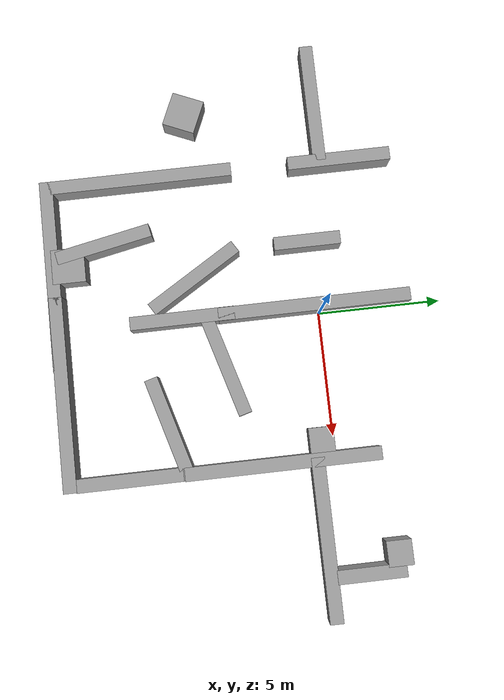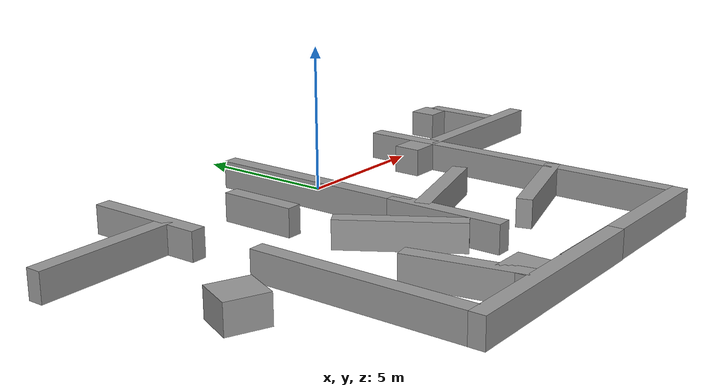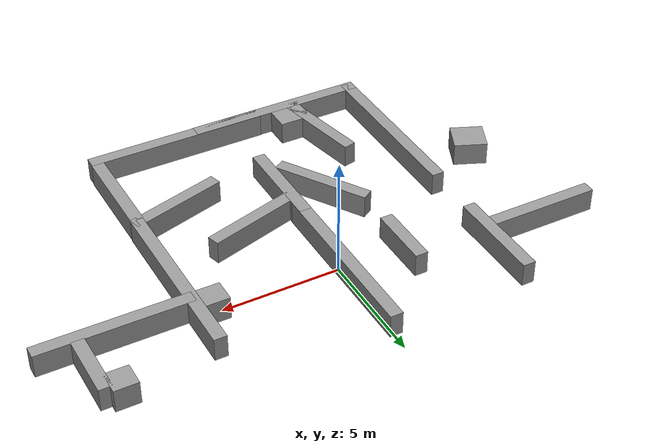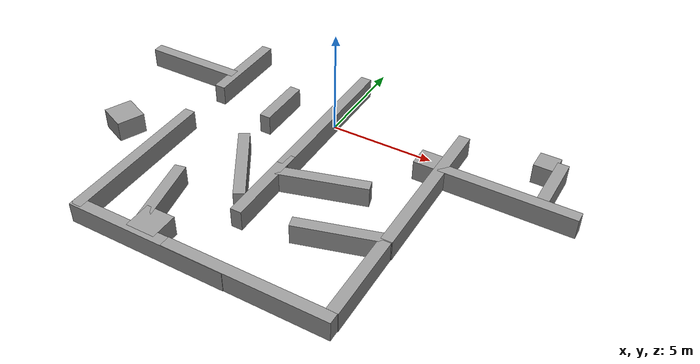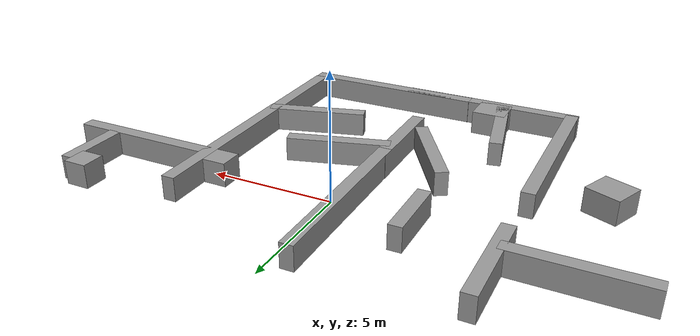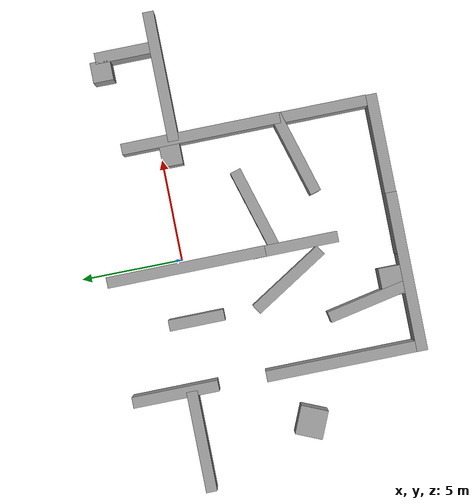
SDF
<sdf version="1.6">
 <model name="Maze01">
  <link name="link_10">
   <pose>9.80009 2.02423 9e-06 0 -0 0</pose>
   <inertial>
    <mass>1</mass>
    <inertia>
     <ixx>0.166667</ixx>
     <ixy>0</ixy>
     <ixz>0</ixz>
     <iyy>0.166667</iyy>
     <iyz>0</iyz>
     <izz>0.166667</izz>
    </inertia>
   </inertial>
   <visual name="visual">
    <geometry><box><size>1 1 1</size></box></geometry>
    <material>
     <lighting>1</lighting>
     <script><uri>file://media/materials/scripts/gazebo.material</uri><name>Gazebo/Grey</name></script>
     <ambient>0.3 0.3 0.3 1</ambient>
     <diffuse>0.7 0.7 0.7 1</diffuse>
     <specular>0.01 0.01 0.01 1</specular>
     <emissive>0 0 0 1</emissive>
    </material>
   </visual>
   <collision name="collision">
    <geometry><box><size>1 1 1</size></box></geometry>
    <surface>
     <friction>
      <ode><mu>1</mu><mu2>1</mu2><fdir1>0 0 0</fdir1><slip1>0</slip1><slip2>0</slip2></ode>
      <torsional>
       <coefficient>1</coefficient>
       <patch_radius>0</patch_radius>
       <surface_radius>0</surface_radius>
       <use_patch_radius>1</use_patch_radius>
       <ode><slip>0</slip></ode>
      </torsional>
     </friction>
     <bounce><restitution_coefficient>0</restitution_coefficient><threshold>1e+06</threshold></bounce>
     <contact>
      <collide_without_contact>0</collide_without_contact>
      <collide_without_contact_bitmask>1</collide_without_contact_bitmask>
      <collide_bitmask>1</collide_bitmask>
      <ode>
       <soft_cfm>0</soft_cfm>
       <soft_erp>0.2</soft_erp>
       <kp>1e+13</kp>
       <kd>1</kd>
       <max_vel>0.01</max_vel>
       <min_depth>0</min_depth>
      </ode>
      <bullet>
       <split_impulse>1</split_impulse>
       <split_impulse_penetration_threshold>-0.01</split_impulse_penetration_threshold>
       <soft_cfm>0</soft_cfm>
       <soft_erp>0.2</soft_erp>
       <kp>1e+13</kp>
       <kd>1</kd>
      </bullet>
     </contact>
    </surface>
   </collision>
  </link>
  <link name="link_4_clone_0_clone_clone_1_clone_0">
   <pose>-2.67814 -10.6624 9e-06 0 -0 0</pose>
   <inertial>
    <mass>4.30693</mass>
    <inertia><ixx>0.46587</ixx><ixy>0</ixy><ixz>0</ixz><iyy>22.6991</iyy><iyz>0</iyz><izz>22.4471</izz></inertia>
   </inertial>
   <visual name="visual">
    <geometry><box><size>7.88951 0.545905 1</size></box></geometry>
    <material>
     <lighting>1</lighting>
     <script><uri>file://media/materials/scripts/gazebo.material</uri><name>Gazebo/Grey</name></script>
     <ambient>0.3 0.3 0.3 1</ambient>
     <diffuse>0.7 0.7 0.7 1</diffuse>
     <specular>0.01 0.01 0.01 1</specular>
     <emissive>0 0 0 1</emissive>
     <shader type="pixel"/>
    </material>
   </visual>
   <collision name="collision">
    <geometry><box><size>7.88951 0.545905 1</size></box></geometry>
    <surface>
     <friction>
      <ode><mu>1</mu><mu2>1</mu2><fdir1>0 0 0</fdir1><slip1>0</slip1><slip2>0</slip2></ode>
      <torsional>
       <coefficient>1</coefficient>
       <patch_radius>0</patch_radius>
       <surface_radius>0</surface_radius>
       <use_patch_radius>1</use_patch_radius>
       <ode><slip>0</slip></ode>
      </torsional>
     </friction>
     <bounce><restitution_coefficient>0</restitution_coefficient><threshold>1e+06</threshold></bounce>
     <contact>
      <collide_without_contact>0</collide_without_contact>
      <collide_without_contact_bitmask>1</collide_without_contact_bitmask>
      <collide_bitmask>1</collide_bitmask>
      <ode>
       <soft_cfm>0</soft_cfm>
       <soft_erp>0.2</soft_erp>
       <kp>1e+13</kp>
       <kd>1</kd>
       <max_vel>0.01</max_vel>
       <min_depth>0</min_depth>
      </ode>
      <bullet>
       <split_impulse>1</split_impulse>
       <split_impulse_penetration_threshold>-0.01</split_impulse_penetration_threshold>
       <soft_cfm>0</soft_cfm>
       <soft_erp>0.2</soft_erp>
       <kp>1e+13</kp>
       <kd>1</kd>
      </bullet>
     </contact>
    </surface>
   </collision>
  </link>
  <link name="link_4_clone_0_clone_clone_1_clone_0_clone">
   <pose>2.19804 -10.643 9e-06 0 -0 0</pose>
   <inertial>
    <mass>4.30693</mass>
    <inertia><ixx>0.46587</ixx><ixy>0</ixy><ixz>0</ixz><iyy>22.6991</iyy><iyz>0</iyz><izz>22.4471</izz></inertia>
   </inertial>
   <visual name="visual">
    <geometry><box><size>7.88951 0.545905 1</size></box></geometry>
    <material>
     <lighting>1</lighting>
     <script><uri>file://media/materials/scripts/gazebo.material</uri><name>Gazebo/Grey</name></script>
     <ambient>0.3 0.3 0.3 1</ambient>
     <diffuse>0.7 0.7 0.7 1</diffuse>
     <specular>0.01 0.01 0.01 1</specular>
     <emissive>0 0 0 1</emissive>
     <shader type="pixel"/>
    </material>
   </visual>
   <collision name="collision">
    <geometry><box><size>7.88951 0.545905 1</size></box></geometry>
    <surface>
     <friction>
      <ode><mu>1</mu><mu2>1</mu2><fdir1>0 0 0</fdir1><slip1>0</slip1><slip2>0</slip2></ode>
      <torsional>
       <coefficient>1</coefficient>
       <patch_radius>0</patch_radius>
       <surface_radius>0</surface_radius>
       <use_patch_radius>1</use_patch_radius>
       <ode><slip>0</slip></ode>
      </torsional>
     </friction>
     <bounce><restitution_coefficient>0</restitution_coefficient><threshold>1e+06</threshold></bounce>
     <contact>
      <collide_without_contact>0</collide_without_contact>
      <collide_without_contact_bitmask>1</collide_without_contact_bitmask>
      <collide_bitmask>1</collide_bitmask>
      <ode>
       <soft_cfm>0</soft_cfm>
       <soft_erp>0.2</soft_erp>
       <kp>1e+13</kp>
       <kd>1</kd>
       <max_vel>0.01</max_vel>
       <min_depth>0</min_depth>
      </ode>
      <bullet>
       <split_impulse>1</split_impulse>
       <split_impulse_penetration_threshold>-0.01</split_impulse_penetration_threshold>
       <soft_cfm>0</soft_cfm>
       <soft_erp>0.2</soft_erp>
       <kp>1e+13</kp>
       <kd>1</kd>
      </bullet>
     </contact>
    </surface>
   </collision>
  </link>
  <link name="robot3_block">
   <pose>9 -0.75 9e-06 0 -0 0</pose>
   <inertial>
    <mass>3.50538</mass>
    <inertia><ixx>0.379168</ixx><ixy>0</ixy><ixz>0</ixz><iyy>12.3366</iyy><iyz>0</iyz><izz>12.1315</izz></inertia>
   </inertial>
   <visual name="visual">
    <geometry><box><size>6.42122 0.545905 1</size></box></geometry>
    <material>
     <lighting>1</lighting>
     <script><uri>file://media/materials/scripts/gazebo.material</uri><name>Gazebo/Grey</name></script>
     <ambient>0.3 0.3 0.3 1</ambient>
     <diffuse>0.7 0.7 0.7 1</diffuse>
     <specular>0.01 0.01 0.01 1</specular>
     <emissive>0 0 0 1</emissive>
     <shader type="pixel"/>
    </material>
   </visual>
   <collision name="collision">
    <geometry><box><size>6.42122 0.545905 1</size></box></geometry>
    <surface>
     <friction>
      <ode><mu>1</mu><mu2>1</mu2><fdir1>0 0 0</fdir1><slip1>0</slip1><slip2>0</slip2></ode>
      <torsional>
       <coefficient>1</coefficient>
       <patch_radius>0</patch_radius>
       <surface_radius>0</surface_radius>
       <use_patch_radius>1</use_patch_radius>
       <ode><slip>0</slip></ode>
      </torsional>
     </friction>
     <bounce><restitution_coefficient>0</restitution_coefficient><threshold>1e+06</threshold></bounce>
     <contact>
      <collide_without_contact>0</collide_without_contact>
      <collide_without_contact_bitmask>1</collide_without_contact_bitmask>
      <collide_bitmask>1</collide_bitmask>
      <ode>
       <soft_cfm>0</soft_cfm>
       <soft_erp>0.2</soft_erp>
       <kp>1e+13</kp>
       <kd>1</kd>
       <max_vel>0.01</max_vel>
       <min_depth>0</min_depth>
      </ode>
      <bullet>
       <split_impulse>1</split_impulse>
       <split_impulse_penetration_threshold>-0.01</split_impulse_penetration_threshold>
       <soft_cfm>0</soft_cfm>
       <soft_erp>0.2</soft_erp>
       <kp>1e+13</kp>
       <kd>1</kd>
      </bullet>
     </contact>
    </surface>
   </collision>
  </link>
  <link name="new_wall_2">
   <pose>-8.87 0.76 9e-06 0 -0 0</pose>
   <inertial>
    <mass>3.50538</mass>
    <inertia><ixx>0.379168</ixx><ixy>0</ixy><ixz>0</ixz><iyy>12.3366</iyy><iyz>0</iyz><izz>12.1315</izz></inertia>
   </inertial>
   <visual name="visual">
    <geometry><box><size>5 0.545905 1</size></box></geometry>
    <material>
     <lighting>1</lighting>
     <script><uri>file://media/materials/scripts/gazebo.material</uri><name>Gazebo/Grey</name></script>
     <ambient>0.3 0.3 0.3 1</ambient>
     <diffuse>0.7 0.7 0.7 1</diffuse>
     <specular>0.01 0.01 0.01 1</specular>
     <emissive>0 0 0 1</emissive>
     <shader type="pixel"/>
    </material>
   </visual>
   <collision name="collision">
    <geometry><box><size>5 0.545905 1</size></box></geometry>
    <surface>
     <friction>
      <ode><mu>1</mu><mu2>1</mu2><fdir1>0 0 0</fdir1><slip1>0</slip1><slip2>0</slip2></ode>
      <torsional>
       <coefficient>1</coefficient>
       <patch_radius>0</patch_radius>
       <surface_radius>0</surface_radius>
       <use_patch_radius>1</use_patch_radius>
       <ode><slip>0</slip></ode>
      </torsional>
     </friction>
     <bounce><restitution_coefficient>0</restitution_coefficient><threshold>1e+06</threshold></bounce>
     <contact>
      <collide_without_contact>0</collide_without_contact>
      <collide_without_contact_bitmask>1</collide_without_contact_bitmask>
      <collide_bitmask>1</collide_bitmask>
      <ode>
       <soft_cfm>0</soft_cfm>
       <soft_erp>0.2</soft_erp>
       <kp>1e+13</kp>
       <kd>1</kd>
       <max_vel>0.01</max_vel>
       <min_depth>0</min_depth>
      </ode>
      <bullet>
       <split_impulse>1</split_impulse>
       <split_impulse_penetration_threshold>-0.01</split_impulse_penetration_threshold>
       <soft_cfm>0</soft_cfm>
       <soft_erp>0.2</soft_erp>
       <kp>1e+13</kp>
       <kd>1</kd>
      </bullet>
     </contact>
    </surface>
   </collision>
  </link>
  <link name="link_4_clone_1_clone_1_clone">
   <pose>-6.35585 1.56416 9e-06 0 0 -1.56693</pose>
   <inertial>
    <mass>2.3361</mass>
    <inertia><ixx>0.25269</ixx><ixy>0</ixy><ixz>0</ixz><iyy>3.75965</iyy><iyz>0</iyz><izz>3.62299</izz></inertia>
   </inertial>
   <visual name="visual">
    <geometry><box><size>4.27931 0.545905 1</size></box></geometry>
    <material>
     <lighting>1</lighting>
     <script><uri>file://media/materials/scripts/gazebo.material</uri><name>Gazebo/Grey</name></script>
     <ambient>0.3 0.3 0.3 1</ambient>
     <diffuse>0.7 0.7 0.7 1</diffuse>
     <specular>0.01 0.01 0.01 1</specular>
     <emissive>0 0 0 1</emissive>
     <shader type="pixel"/>
    </material>
   </visual>
   <collision name="collision">
    <geometry><box><size>4.27931 0.545905 1</size></box></geometry>
    <surface>
     <friction>
      <ode><mu>1</mu><mu2>1</mu2><fdir1>0 0 0</fdir1><slip1>0</slip1><slip2>0</slip2></ode>
      <torsional>
       <coefficient>1</coefficient>
       <patch_radius>0</patch_radius>
       <surface_radius>0</surface_radius>
       <use_patch_radius>1</use_patch_radius>
       <ode><slip>0</slip></ode>
      </torsional>
     </friction>
     <bounce><restitution_coefficient>0</restitution_coefficient><threshold>1e+06</threshold></bounce>
     <contact>
      <collide_without_contact>0</collide_without_contact>
      <collide_without_contact_bitmask>1</collide_without_contact_bitmask>
      <collide_bitmask>1</collide_bitmask>
      <ode>
       <soft_cfm>0</soft_cfm>
       <soft_erp>0.2</soft_erp>
       <kp>1e+13</kp>
       <kd>1</kd>
       <max_vel>0.01</max_vel>
       <min_depth>0</min_depth>
      </ode>
      <bullet>
       <split_impulse>1</split_impulse>
       <split_impulse_penetration_threshold>-0.01</split_impulse_penetration_threshold>
       <soft_cfm>0</soft_cfm>
       <soft_erp>0.2</soft_erp>
       <kp>1e+13</kp>
       <kd>1</kd>
      </bullet>
     </contact>
    </surface>
   </collision>
  </link>
  <link name="link_4_clone_1_clone_1_clone_0">
   <pose>-0.36051 -0.154697 9e-06 0 0 -1.56693</pose>
   <inertial>
    <mass>4.30693</mass>
    <inertia><ixx>0.46587</ixx><ixy>0</ixy><ixz>0</ixz><iyy>22.6991</iyy><iyz>0</iyz><izz>22.4471</izz></inertia>
   </inertial>
   <visual name="visual">
    <geometry><box><size>7.88951 0.545905 1</size></box></geometry>
    <material>
     <lighting>1</lighting>
     <script><uri>file://media/materials/scripts/gazebo.material</uri><name>Gazebo/Grey</name></script>
     <ambient>0.3 0.3 0.3 1</ambient>
     <diffuse>0.7 0.7 0.7 1</diffuse>
     <specular>0.01 0.01 0.01 1</specular>
     <emissive>0 0 0 1</emissive>
     <shader type="pixel"/>
    </material>
   </visual>
   <collision name="collision">
    <geometry><box><size>7.88951 0.545905 1</size></box></geometry>
    <surface>
     <friction>
      <ode><mu>1</mu><mu2>1</mu2><fdir1>0 0 0</fdir1><slip1>0</slip1><slip2>0</slip2></ode>
      <torsional>
       <coefficient>1</coefficient>
       <patch_radius>0</patch_radius>
       <surface_radius>0</surface_radius>
       <use_patch_radius>1</use_patch_radius>
       <ode><slip>0</slip></ode>
      </torsional>
     </friction>
     <bounce><restitution_coefficient>0</restitution_coefficient><threshold>1e+06</threshold></bounce>
     <contact>
      <collide_without_contact>0</collide_without_contact>
      <collide_without_contact_bitmask>1</collide_without_contact_bitmask>
      <collide_bitmask>1</collide_bitmask>
      <ode>
       <soft_cfm>0</soft_cfm>
       <soft_erp>0.2</soft_erp>
       <kp>1e+13</kp>
       <kd>1</kd>
       <max_vel>0.01</max_vel>
       <min_depth>0</min_depth>
      </ode>
      <bullet>
       <split_impulse>1</split_impulse>
       <split_impulse_penetration_threshold>-0.01</split_impulse_penetration_threshold>
       <soft_cfm>0</soft_cfm>
       <soft_erp>0.2</soft_erp>
       <kp>1e+13</kp>
       <kd>1</kd>
      </bullet>
     </contact>
    </surface>
   </collision>
  </link>
  <link name="horizontal_block">
   <pose>-6.360511 -6.9000 9e-06 0 0 -1.56693</pose>
   <inertial>
    <mass>4.30693</mass>
    <inertia><ixx>0.46587</ixx><ixy>0</ixy><ixz>0</ixz><iyy>22.6991</iyy><iyz>0</iyz><izz>22.4471</izz></inertia>
   </inertial>
   <visual name="visual">
    <geometry><box><size>7.88951 0.545905 1</size></box></geometry>
    <material>
     <lighting>1</lighting>
     <script><uri>file://media/materials/scripts/gazebo.material</uri><name>Gazebo/Grey</name></script>
     <ambient>0.3 0.3 0.3 1</ambient>
     <diffuse>0.7 0.7 0.7 1</diffuse>
     <specular>0.01 0.01 0.01 1</specular>
     <emissive>0 0 0 1</emissive>
     <shader type="pixel"/>
    </material>
   </visual>
   <collision name="collision">
    <geometry><box><size>7.88951 0.545905 1</size></box></geometry>
    <surface>
     <friction>
      <ode><mu>1</mu><mu2>1</mu2><fdir1>0 0 0</fdir1><slip1>0</slip1><slip2>0</slip2></ode>
      <torsional>
       <coefficient>1</coefficient>
       <patch_radius>0</patch_radius>
       <surface_radius>0</surface_radius>
       <use_patch_radius>1</use_patch_radius>
       <ode><slip>0</slip></ode>
      </torsional>
     </friction>
     <bounce><restitution_coefficient>0</restitution_coefficient><threshold>1e+06</threshold></bounce>
     <contact>
      <collide_without_contact>0</collide_without_contact>
      <collide_without_contact_bitmask>1</collide_without_contact_bitmask>
      <collide_bitmask>1</collide_bitmask>
      <ode>
       <soft_cfm>0</soft_cfm>
       <soft_erp>0.2</soft_erp>
       <kp>1e+13</kp>
       <kd>1</kd>
       <max_vel>0.01</max_vel>
       <min_depth>0</min_depth>
      </ode>
      <bullet>
       <split_impulse>1</split_impulse>
       <split_impulse_penetration_threshold>-0.01</split_impulse_penetration_threshold>
       <soft_cfm>0</soft_cfm>
       <soft_erp>0.2</soft_erp>
       <kp>1e+13</kp>
       <kd>1</kd>
      </bullet>
     </contact>
    </surface>
   </collision>
  </link>
  <link name="link_4_clone_1_clone_1_clone_0_clone">
   <pose>5.88859 -2.1218 9e-06 0 0 -1.56693</pose>
   <inertial>
    <mass>4.30693</mass>
    <inertia><ixx>0.46587</ixx><ixy>0</ixy><ixz>0</ixz><iyy>22.6991</iyy><iyz>0</iyz><izz>22.4471</izz></inertia>
   </inertial>
   <visual name="visual">
    <geometry><box><size>7.88951 0.545905 1</size></box></geometry>
    <material>
     <lighting>1</lighting>
     <script><uri>file://media/materials/scripts/gazebo.material</uri><name>Gazebo/Grey</name></script>
     <ambient>0.3 0.3 0.3 1</ambient>
     <diffuse>0.7 0.7 0.7 1</diffuse>
     <specular>0.01 0.01 0.01 1</specular>
     <emissive>0 0 0 1</emissive>
     <shader type="pixel"/>
    </material>
   </visual>
   <collision name="collision">
    <geometry><box><size>7.88951 0.545905 1</size></box></geometry>
    <surface>
     <friction>
      <ode><mu>1</mu><mu2>1</mu2><fdir1>0 0 0</fdir1><slip1>0</slip1><slip2>0</slip2></ode>
      <torsional>
       <coefficient>1</coefficient>
       <patch_radius>0</patch_radius>
       <surface_radius>0</surface_radius>
       <use_patch_radius>1</use_patch_radius>
       <ode><slip>0</slip></ode>
      </torsional>
     </friction>
     <bounce><restitution_coefficient>0</restitution_coefficient><threshold>1e+06</threshold></bounce>
     <contact>
      <collide_without_contact>0</collide_without_contact>
      <collide_without_contact_bitmask>1</collide_without_contact_bitmask>
      <collide_bitmask>1</collide_bitmask>
      <ode>
       <soft_cfm>0</soft_cfm>
       <soft_erp>0.2</soft_erp>
       <kp>1e+13</kp>
       <kd>1</kd>
       <max_vel>0.01</max_vel>
       <min_depth>0</min_depth>
      </ode>
      <bullet>
       <split_impulse>1</split_impulse>
       <split_impulse_penetration_threshold>-0.01</split_impulse_penetration_threshold>
       <soft_cfm>0</soft_cfm>
       <soft_erp>0.2</soft_erp>
       <kp>1e+13</kp>
       <kd>1</kd>
      </bullet>
     </contact>
    </surface>
   </collision>
  </link>
  <link name="link_4_clone_1_clone_1_clone_clone">
   <pose>-3.01465 -0.148136 9e-06 0 0 -1.56693</pose>
   <inertial>
    <mass>1.50003</mass>
    <inertia>
     <ixx>0.162255</ixx>
     <ixy>0</ixy>
     <ixz>0</ixz>
     <iyy>1.06881</iyy>
     <iyz>0</iyz>
     <izz>0.981058</izz>
    </inertia>
   </inertial>
   <visual name="visual">
    <geometry><box><size>2.74778 0.545905 1</size></box></geometry>
    <material>
     <lighting>1</lighting>
     <script><uri>file://media/materials/scripts/gazebo.material</uri><name>Gazebo/Grey</name></script>
     <ambient>0.3 0.3 0.3 1</ambient>
     <diffuse>0.7 0.7 0.7 1</diffuse>
     <specular>0.01 0.01 0.01 1</specular>
     <emissive>0 0 0 1</emissive>
     <shader type="pixel"/>
    </material>
   </visual>
   <collision name="collision">
    <geometry><box><size>2.74778 0.545905 1</size></box></geometry>
    <surface>
     <friction>
      <ode><mu>1</mu><mu2>1</mu2><fdir1>0 0 0</fdir1><slip1>0</slip1><slip2>0</slip2></ode>
      <torsional>
       <coefficient>1</coefficient>
       <patch_radius>0</patch_radius>
       <surface_radius>0</surface_radius>
       <use_patch_radius>1</use_patch_radius>
       <ode><slip>0</slip></ode>
      </torsional>
     </friction>
     <bounce><restitution_coefficient>0</restitution_coefficient><threshold>1e+06</threshold></bounce>
     <contact>
      <collide_without_contact>0</collide_without_contact>
      <collide_without_contact_bitmask>1</collide_without_contact_bitmask>
      <collide_bitmask>1</collide_bitmask>
      <ode>
       <soft_cfm>0</soft_cfm>
       <soft_erp>0.2</soft_erp>
       <kp>1e+13</kp>
       <kd>1</kd>
       <max_vel>0.01</max_vel>
       <min_depth>0</min_depth>
      </ode>
      <bullet>
       <split_impulse>1</split_impulse>
       <split_impulse_penetration_threshold>-0.01</split_impulse_penetration_threshold>
       <soft_cfm>0</soft_cfm>
       <soft_erp>0.2</soft_erp>
       <kp>1e+13</kp>
       <kd>1</kd>
      </bullet>
     </contact>
    </surface>
   </collision>
  </link>
  <link name="feature1">
   <pose>-3.75 -8.5 9e-06 0 0 -1.37</pose>
   <inertial>
    <mass>1.50003</mass>
    <inertia>
     <ixx>0.162255</ixx>
     <ixy>0</ixy>
     <ixz>0</ixz>
     <iyy>1.06881</iyy>
     <iyz>0</iyz>
     <izz>0.981058</izz>
    </inertia>
   </inertial>
   <visual name="visual">
    <geometry><box><size>4 0.545905 1</size></box></geometry>
    <material>
     <lighting>1</lighting>
     <script><uri>file://media/materials/scripts/gazebo.material</uri><name>Gazebo/Grey</name></script>
     <ambient>0.3 0.3 0.3 1</ambient>
     <diffuse>0.7 0.7 0.7 1</diffuse>
     <specular>0.01 0.01 0.01 1</specular>
     <emissive>0 0 0 1</emissive>
     <shader type="pixel"/>
    </material>
   </visual>
   <collision name="collision">
    <geometry><box><size>4 0.545905 1</size></box></geometry>
    <surface>
     <friction>
      <ode><mu>1</mu><mu2>1</mu2><fdir1>0 0 0</fdir1><slip1>0</slip1><slip2>0</slip2></ode>
      <torsional>
       <coefficient>1</coefficient>
       <patch_radius>0</patch_radius>
       <surface_radius>0</surface_radius>
       <use_patch_radius>1</use_patch_radius>
       <ode><slip>0</slip></ode>
      </torsional>
     </friction>
     <bounce><restitution_coefficient>0</restitution_coefficient><threshold>1e+06</threshold></bounce>
     <contact>
      <collide_without_contact>0</collide_without_contact>
      <collide_without_contact_bitmask>1</collide_without_contact_bitmask>
      <collide_bitmask>1</collide_bitmask>
      <ode>
       <soft_cfm>0</soft_cfm>
       <soft_erp>0.2</soft_erp>
       <kp>1e+13</kp>
       <kd>1</kd>
       <max_vel>0.01</max_vel>
       <min_depth>0</min_depth>
      </ode>
      <bullet>
       <split_impulse>1</split_impulse>
       <split_impulse_penetration_threshold>-0.01</split_impulse_penetration_threshold>
       <soft_cfm>0</soft_cfm>
       <soft_erp>0.2</soft_erp>
       <kp>1e+13</kp>
       <kd>1</kd>
      </bullet>
     </contact>
    </surface>
   </collision>
  </link>
  <link name="partition_9">
   <pose>10.47 0.851864 9e-06 0 0 -1.56693</pose>
   <inertial>
    <mass>1.50003</mass>
    <inertia>
     <ixx>0.162255</ixx>
     <ixy>0</ixy>
     <ixz>0</ixz>
     <iyy>1.06881</iyy>
     <iyz>0</iyz>
     <izz>0.981058</izz>
    </inertia>
   </inertial>
   <visual name="visual">
    <geometry><box><size>2.74778 0.545905 1</size></box></geometry>
    <material>
     <lighting>1</lighting>
     <script><uri>file://media/materials/scripts/gazebo.material</uri><name>Gazebo/Grey</name></script>
     <ambient>0.3 0.3 0.3 1</ambient>
     <diffuse>0.7 0.7 0.7 1</diffuse>
     <specular>0.01 0.01 0.01 1</specular>
     <emissive>0 0 0 1</emissive>
     <shader type="pixel"/>
    </material>
   </visual>
   <collision name="collision">
    <geometry><box><size>2.74778 0.545905 1</size></box></geometry>
    <surface>
     <friction>
      <ode><mu>1</mu><mu2>1</mu2><fdir1>0 0 0</fdir1><slip1>0</slip1><slip2>0</slip2></ode>
      <torsional>
       <coefficient>1</coefficient>
       <patch_radius>0</patch_radius>
       <surface_radius>0</surface_radius>
       <use_patch_radius>1</use_patch_radius>
       <ode><slip>0</slip></ode>
      </torsional>
     </friction>
     <bounce><restitution_coefficient>0</restitution_coefficient><threshold>1e+06</threshold></bounce>
     <contact>
      <collide_without_contact>0</collide_without_contact>
      <collide_without_contact_bitmask>1</collide_without_contact_bitmask>
      <collide_bitmask>1</collide_bitmask>
      <ode>
       <soft_cfm>0</soft_cfm>
       <soft_erp>0.2</soft_erp>
       <kp>1e+13</kp>
       <kd>1</kd>
       <max_vel>0.01</max_vel>
       <min_depth>0</min_depth>
      </ode>
      <bullet>
       <split_impulse>1</split_impulse>
       <split_impulse_penetration_threshold>-0.01</split_impulse_penetration_threshold>
       <soft_cfm>0</soft_cfm>
       <soft_erp>0.2</soft_erp>
       <kp>1e+13</kp>
       <kd>1</kd>
      </bullet>
     </contact>
    </surface>
   </collision>
  </link>
  <link name="link_4_clone_1_clone_1_clone_clone_0">
   <pose>-1.956329 -4.937932 9e-06 0 0 -1.016931</pose>
   <inertial>
    <mass>2.3361</mass>
    <inertia><ixx>0.25269</ixx><ixy>0</ixy><ixz>0</ixz><iyy>3.75965</iyy><iyz>0</iyz><izz>3.62299</izz></inertia>
   </inertial>
   <visual name="visual">
    <geometry><box><size>4.27931 0.545905 1</size></box></geometry>
    <material>
     <lighting>1</lighting>
     <script><uri>file://media/materials/scripts/gazebo.material</uri><name>Gazebo/Grey</name></script>
     <ambient>0.3 0.3 0.3 1</ambient>
     <diffuse>0.7 0.7 0.7 1</diffuse>
     <specular>0.01 0.01 0.01 1</specular>
     <emissive>0 0 0 1</emissive>
     <shader type="pixel"/>
    </material>
   </visual>
   <collision name="collision">
    <geometry><box><size>4.27931 0.545905 1</size></box></geometry>
    <surface>
     <friction>
      <ode><mu>1</mu><mu2>1</mu2><fdir1>0 0 0</fdir1><slip1>0</slip1><slip2>0</slip2></ode>
      <torsional>
       <coefficient>1</coefficient>
       <patch_radius>0</patch_radius>
       <surface_radius>0</surface_radius>
       <use_patch_radius>1</use_patch_radius>
       <ode><slip>0</slip></ode>
      </torsional>
     </friction>
     <bounce><restitution_coefficient>0</restitution_coefficient><threshold>1e+06</threshold></bounce>
     <contact>
      <collide_without_contact>0</collide_without_contact>
      <collide_without_contact_bitmask>1</collide_without_contact_bitmask>
      <collide_bitmask>1</collide_bitmask>
      <ode>
       <soft_cfm>0</soft_cfm>
       <soft_erp>0.2</soft_erp>
       <kp>1e+13</kp>
       <kd>1</kd>
       <max_vel>0.01</max_vel>
       <min_depth>0</min_depth>
      </ode>
      <bullet>
       <split_impulse>1</split_impulse>
       <split_impulse_penetration_threshold>-0.01</split_impulse_penetration_threshold>
       <soft_cfm>0</soft_cfm>
       <soft_erp>0.2</soft_erp>
       <kp>1e+13</kp>
       <kd>1</kd>
      </bullet>
     </contact>
    </surface>
   </collision>
  </link>
  <link name="link_4_clone_1_clone_1_clone_clone_0_clone">
   <pose>4.03057 -6.47031 9e-06 0 -0 0.2833</pose>
   <inertial>
    <mass>2.3361</mass>
    <inertia><ixx>0.25269</ixx><ixy>0</ixy><ixz>0</ixz><iyy>3.75965</iyy><iyz>0</iyz><izz>3.62299</izz></inertia>
   </inertial>
   <visual name="visual">
    <geometry><box><size>4.27931 0.545905 1</size></box></geometry>
    <material>
     <lighting>1</lighting>
     <script><uri>file://media/materials/scripts/gazebo.material</uri><name>Gazebo/Grey</name></script>
     <ambient>0.3 0.3 0.3 1</ambient>
     <diffuse>0.7 0.7 0.7 1</diffuse>
     <specular>0.01 0.01 0.01 1</specular>
     <emissive>0 0 0 1</emissive>
     <shader type="pixel"/>
    </material>
   </visual>
   <collision name="collision">
    <geometry><box><size>4.27931 0.545905 1</size></box></geometry>
    <surface>
     <friction>
      <ode><mu>1</mu><mu2>1</mu2><fdir1>0 0 0</fdir1><slip1>0</slip1><slip2>0</slip2></ode>
      <torsional>
       <coefficient>1</coefficient>
       <patch_radius>0</patch_radius>
       <surface_radius>0</surface_radius>
       <use_patch_radius>1</use_patch_radius>
       <ode><slip>0</slip></ode>
      </torsional>
     </friction>
     <bounce><restitution_coefficient>0</restitution_coefficient><threshold>1e+06</threshold></bounce>
     <contact>
      <collide_without_contact>0</collide_without_contact>
      <collide_without_contact_bitmask>1</collide_without_contact_bitmask>
      <collide_bitmask>1</collide_bitmask>
      <ode>
       <soft_cfm>0</soft_cfm>
       <soft_erp>0.2</soft_erp>
       <kp>1e+13</kp>
       <kd>1</kd>
       <max_vel>0.01</max_vel>
       <min_depth>0</min_depth>
      </ode>
      <bullet>
       <split_impulse>1</split_impulse>
       <split_impulse_penetration_threshold>-0.01</split_impulse_penetration_threshold>
       <soft_cfm>0</soft_cfm>
       <soft_erp>0.2</soft_erp>
       <kp>1e+13</kp>
       <kd>1</kd>
      </bullet>
     </contact>
    </surface>
   </collision>
  </link>
  <link name="link_4_clone_1_clone_1_clone_clone_0_clone_0">
   <pose>-0.349699 -5.56946 9e-06 0 0 -1.56693</pose>
   <inertial>
    <mass>2.3361</mass>
    <inertia><ixx>0.25269</ixx><ixy>0</ixy><ixz>0</ixz><iyy>3.75965</iyy><iyz>0</iyz><izz>3.62299</izz></inertia>
   </inertial>
   <visual name="visual">
    <geometry><box><size>4.27931 0.545905 1</size></box></geometry>
    <material>
     <lighting>1</lighting>
     <script><uri>file://media/materials/scripts/gazebo.material</uri><name>Gazebo/Grey</name></script>
     <ambient>0.3 0.3 0.3 1</ambient>
     <diffuse>0.7 0.7 0.7 1</diffuse>
     <specular>0.01 0.01 0.01 1</specular>
     <emissive>0 0 0 1</emissive>
     <shader type="pixel"/>
    </material>
   </visual>
   <collision name="collision">
    <geometry><box><size>4.27931 0.545905 1</size></box></geometry>
    <surface>
     <friction>
      <ode><mu>1</mu><mu2>1</mu2><fdir1>0 0 0</fdir1><slip1>0</slip1><slip2>0</slip2></ode>
      <torsional>
       <coefficient>1</coefficient>
       <patch_radius>0</patch_radius>
       <surface_radius>0</surface_radius>
       <use_patch_radius>1</use_patch_radius>
       <ode><slip>0</slip></ode>
      </torsional>
     </friction>
     <bounce><restitution_coefficient>0</restitution_coefficient><threshold>1e+06</threshold></bounce>
     <contact>
      <collide_without_contact>0</collide_without_contact>
      <collide_without_contact_bitmask>1</collide_without_contact_bitmask>
      <collide_bitmask>1</collide_bitmask>
      <ode>
       <soft_cfm>0</soft_cfm>
       <soft_erp>0.2</soft_erp>
       <kp>1e+13</kp>
       <kd>1</kd>
       <max_vel>0.01</max_vel>
       <min_depth>0</min_depth>
      </ode>
      <bullet>
       <split_impulse>1</split_impulse>
       <split_impulse_penetration_threshold>-0.01</split_impulse_penetration_threshold>
       <soft_cfm>0</soft_cfm>
       <soft_erp>0.2</soft_erp>
       <kp>1e+13</kp>
       <kd>1</kd>
      </bullet>
     </contact>
    </surface>
   </collision>
  </link>
  <link name="link_4_clone_1_clone_1_clone_clone_0_clone_1">
   <pose>5.888587 -8.25 9e-06 0 0 -1.56693</pose>
   <inertial>
    <mass>2.3361</mass>
    <inertia><ixx>0.25269</ixx><ixy>0</ixy><ixz>0</ixz><iyy>3.75965</iyy><iyz>0</iyz><izz>3.62299</izz></inertia>
   </inertial>
   <visual name="visual">
    <geometry><box><size>4.27931 0.545905 1</size></box></geometry>
    <material>
     <lighting>1</lighting>
     <script><uri>file://media/materials/scripts/gazebo.material</uri><name>Gazebo/Grey</name></script>
     <ambient>0.3 0.3 0.3 1</ambient>
     <diffuse>0.7 0.7 0.7 1</diffuse>
     <specular>0.01 0.01 0.01 1</specular>
     <emissive>0 0 0 1</emissive>
     <shader type="pixel"/>
    </material>
   </visual>
   <collision name="collision">
    <geometry><box><size>4.27931 0.545905 1</size></box></geometry>
    <surface>
     <friction>
      <ode><mu>1</mu><mu2>1</mu2><fdir1>0 0 0</fdir1><slip1>0</slip1><slip2>0</slip2></ode>
      <torsional>
       <coefficient>1</coefficient>
       <patch_radius>0</patch_radius>
       <surface_radius>0</surface_radius>
       <use_patch_radius>1</use_patch_radius>
       <ode><slip>0</slip></ode>
      </torsional>
     </friction>
     <bounce><restitution_coefficient>0</restitution_coefficient><threshold>1e+06</threshold></bounce>
     <contact>
      <collide_without_contact>0</collide_without_contact>
      <collide_without_contact_bitmask>1</collide_without_contact_bitmask>
      <collide_bitmask>1</collide_bitmask>
      <ode>
       <soft_cfm>0</soft_cfm>
       <soft_erp>0.2</soft_erp>
       <kp>1e+13</kp>
       <kd>1</kd>
       <max_vel>0.01</max_vel>
       <min_depth>0</min_depth>
      </ode>
      <bullet>
       <split_impulse>1</split_impulse>
       <split_impulse_penetration_threshold>-0.01</split_impulse_penetration_threshold>
       <soft_cfm>0</soft_cfm>
       <soft_erp>0.2</soft_erp>
       <kp>1e+13</kp>
       <kd>1</kd>
      </bullet>
     </contact>
    </surface>
   </collision>
  </link>
  <link name="link_4_clone_1_clone_1_clone_clone_0_clone_clone">
   <pose>1.7146 -4.01354 9e-06 0 -0 0.2833</pose>
   <inertial>
    <mass>2.3361</mass>
    <inertia><ixx>0.25269</ixx><ixy>0</ixy><ixz>0</ixz><iyy>3.75965</iyy><iyz>0</iyz><izz>3.62299</izz></inertia>
   </inertial>
   <visual name="visual">
    <geometry><box><size>4.27931 0.545905 1</size></box></geometry>
    <material>
     <lighting>1</lighting>
     <script><uri>file://media/materials/scripts/gazebo.material</uri><name>Gazebo/Grey</name></script>
     <ambient>0.3 0.3 0.3 1</ambient>
     <diffuse>0.7 0.7 0.7 1</diffuse>
     <specular>0.01 0.01 0.01 1</specular>
     <emissive>0 0 0 1</emissive>
     <shader type="pixel"/>
    </material>
   </visual>
   <collision name="collision">
    <geometry><box><size>4.27931 0.545905 1</size></box></geometry>
    <surface>
     <friction>
      <ode><mu>1</mu><mu2>1</mu2><fdir1>0 0 0</fdir1><slip1>0</slip1><slip2>0</slip2></ode>
      <torsional>
       <coefficient>1</coefficient>
       <patch_radius>0</patch_radius>
       <surface_radius>0</surface_radius>
       <use_patch_radius>1</use_patch_radius>
       <ode><slip>0</slip></ode>
      </torsional>
     </friction>
     <bounce><restitution_coefficient>0</restitution_coefficient><threshold>1e+06</threshold></bounce>
     <contact>
      <collide_without_contact>0</collide_without_contact>
      <collide_without_contact_bitmask>1</collide_without_contact_bitmask>
      <collide_bitmask>1</collide_bitmask>
      <ode>
       <soft_cfm>0</soft_cfm>
       <soft_erp>0.2</soft_erp>
       <kp>1e+13</kp>
       <kd>1</kd>
       <max_vel>0.01</max_vel>
       <min_depth>0</min_depth>
      </ode>
      <bullet>
       <split_impulse>1</split_impulse>
       <split_impulse_penetration_threshold>-0.01</split_impulse_penetration_threshold>
       <soft_cfm>0</soft_cfm>
       <soft_erp>0.2</soft_erp>
       <kp>1e+13</kp>
       <kd>1</kd>
      </bullet>
     </contact>
    </surface>
   </collision>
  </link>
  <link name="center_box2">
   <pose>-9.0 -4.6910 9e-06 0 0 -0.406538</pose>
   <inertial>
    <mass>1.94722</mass>
    <inertia><ixx>0.463684</ixx><ixy>0</ixy><ixz>0</ixz><iyy>0.4935</iyy><iyz>0</iyz><izz>0.632648</izz></inertia>
   </inertial>
   <visual name="visual">
    <geometry><box><size>1.42873 1.36291 1</size></box></geometry>
    <material>
     <lighting>1</lighting>
     <script><uri>file://media/materials/scripts/gazebo.material</uri><name>Gazebo/Grey</name></script>
     <ambient>0.3 0.3 0.3 1</ambient>
     <diffuse>0.7 0.7 0.7 1</diffuse>
     <specular>0.01 0.01 0.01 1</specular>
     <emissive>0 0 0 1</emissive>
    </material>
   </visual>
   <collision name="collision">
    <geometry><box><size>1.42873 1.36291 1</size></box></geometry>
    <surface>
     <friction>
      <ode><mu>1</mu><mu2>1</mu2><fdir1>0 0 0</fdir1><slip1>0</slip1><slip2>0</slip2></ode>
      <torsional>
       <coefficient>1</coefficient>
       <patch_radius>0</patch_radius>
       <surface_radius>0</surface_radius>
       <use_patch_radius>1</use_patch_radius>
       <ode><slip>0</slip></ode>
      </torsional>
     </friction>
     <bounce><restitution_coefficient>0</restitution_coefficient><threshold>1e+06</threshold></bounce>
     <contact>
      <collide_without_contact>0</collide_without_contact>
      <collide_without_contact_bitmask>1</collide_without_contact_bitmask>
      <collide_bitmask>1</collide_bitmask>
      <ode>
       <soft_cfm>0</soft_cfm>
       <soft_erp>0.2</soft_erp>
       <kp>1e+13</kp>
       <kd>1</kd>
       <max_vel>0.01</max_vel>
       <min_depth>0</min_depth>
      </ode>
      <bullet>
       <split_impulse>1</split_impulse>
       <split_impulse_penetration_threshold>-0.01</split_impulse_penetration_threshold>
       <soft_cfm>0</soft_cfm>
       <soft_erp>0.2</soft_erp>
       <kp>1e+13</kp>
       <kd>1</kd>
      </bullet>
     </contact>
    </surface>
   </collision>
  </link>
  <link name="center_box3">
   <pose>-3.0 -10.0 9e-06 0 0 9e-06</pose>
   <inertial>
    <mass>1.94722</mass>
    <inertia><ixx>0.463684</ixx><ixy>0</ixy><ixz>0</ixz><iyy>0.4935</iyy><iyz>0</iyz><izz>0.632648</izz></inertia>
   </inertial>
   <visual name="visual">
    <geometry><box><size>1.42873 1.36291 1</size></box></geometry>
    <material>
     <lighting>1</lighting>
     <script><uri>file://media/materials/scripts/gazebo.material</uri><name>Gazebo/Grey</name></script>
     <ambient>0.3 0.3 0.3 1</ambient>
     <diffuse>0.7 0.7 0.7 1</diffuse>
     <specular>0.01 0.01 0.01 1</specular>
     <emissive>0 0 0 1</emissive>
    </material>
   </visual>
   <collision name="collision">
    <geometry><box><size>1.42873 1.36291 1</size></box></geometry>
    <surface>
     <friction>
      <ode><mu>1</mu><mu2>1</mu2><fdir1>0 0 0</fdir1><slip1>0</slip1><slip2>0</slip2></ode>
      <torsional>
       <coefficient>1</coefficient>
       <patch_radius>0</patch_radius>
       <surface_radius>0</surface_radius>
       <use_patch_radius>1</use_patch_radius>
       <ode><slip>0</slip></ode>
      </torsional>
     </friction>
     <bounce><restitution_coefficient>0</restitution_coefficient><threshold>1e+06</threshold></bounce>
     <contact>
      <collide_without_contact>0</collide_without_contact>
      <collide_without_contact_bitmask>1</collide_without_contact_bitmask>
      <collide_bitmask>1</collide_bitmask>
      <ode>
       <soft_cfm>0</soft_cfm>
       <soft_erp>0.2</soft_erp>
       <kp>1e+13</kp>
       <kd>1</kd>
       <max_vel>0.01</max_vel>
       <min_depth>0</min_depth>
      </ode>
      <bullet>
       <split_impulse>1</split_impulse>
       <split_impulse_penetration_threshold>-0.01</split_impulse_penetration_threshold>
       <soft_cfm>0</soft_cfm>
       <soft_erp>0.2</soft_erp>
       <kp>1e+13</kp>
       <kd>1</kd>
      </bullet>
     </contact>
    </surface>
   </collision>
  </link>
  <link name="feature2">
   <pose>5.11198 -0.5 9e-06 0 -0 0</pose>
   <inertial>
    <mass>1</mass>
    <inertia>
     <ixx>0.166667</ixx>
     <ixy>0</ixy>
     <ixz>0</ixz>
     <iyy>0.166667</iyy>
     <iyz>0</iyz>
     <izz>0.166667</izz>
    </inertia>
   </inertial>
   <visual name="visual">
    <geometry><box><size>1 1 1</size></box></geometry>
    <material>
     <lighting>1</lighting>
     <script><uri>file://media/materials/scripts/gazebo.material</uri><name>Gazebo/Grey</name></script>
     <ambient>0.3 0.3 0.3 1</ambient>
     <diffuse>0.7 0.7 0.7 1</diffuse>
     <specular>0.01 0.01 0.01 1</specular>
     <emissive>0 0 0 1</emissive>
    </material>
   </visual>
   <collision name="collision">
    <geometry><box><size>1 1 1</size></box></geometry>
    <surface>
     <friction>
      <ode><mu>1</mu><mu2>1</mu2><fdir1>0 0 0</fdir1><slip1>0</slip1><slip2>0</slip2></ode>
      <torsional>
       <coefficient>1</coefficient>
       <patch_radius>0</patch_radius>
       <surface_radius>0</surface_radius>
       <use_patch_radius>1</use_patch_radius>
       <ode><slip>0</slip></ode>
      </torsional>
     </friction>
     <bounce><restitution_coefficient>0</restitution_coefficient><threshold>1e+06</threshold></bounce>
     <contact>
      <collide_without_contact>0</collide_without_contact>
      <collide_without_contact_bitmask>1</collide_without_contact_bitmask>
      <collide_bitmask>1</collide_bitmask>
      <ode>
       <soft_cfm>0</soft_cfm>
       <soft_erp>0.2</soft_erp>
       <kp>1e+13</kp>
       <kd>1</kd>
       <max_vel>0.01</max_vel>
       <min_depth>0</min_depth>
      </ode>
      <bullet>
       <split_impulse>1</split_impulse>
       <split_impulse_penetration_threshold>-0.01</split_impulse_penetration_threshold>
       <soft_cfm>0</soft_cfm>
       <soft_erp>0.2</soft_erp>
       <kp>1e+13</kp>
       <kd>1</kd>
      </bullet>
     </contact>
    </surface>
   </collision>
  </link>
  <static>0</static>
 </model>
</sdf>
